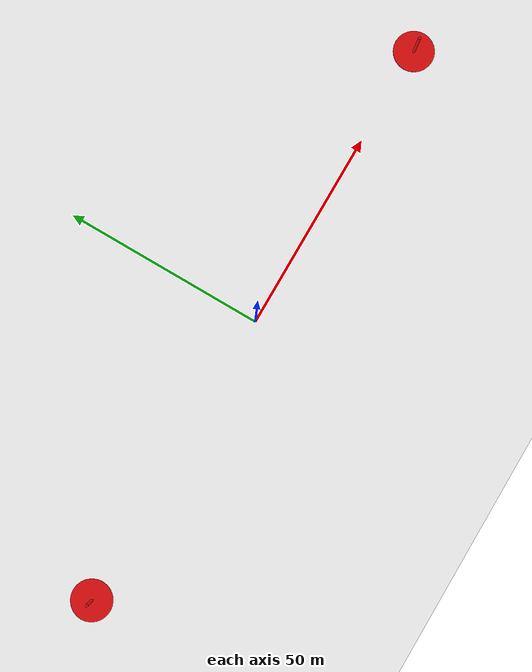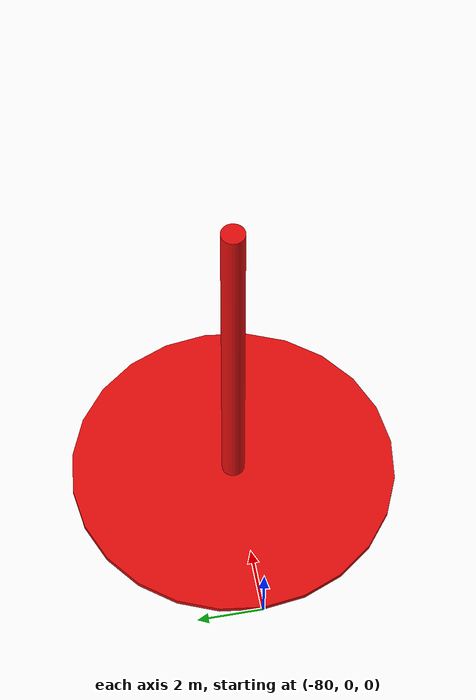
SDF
<?xml version="1.0" encoding="UTF-8"?>
<sdf version="1.9">
  <world name="grass">
    <physics type="ode">
      <max_step_size>0.004</max_step_size>
      <real_time_factor>1.0</real_time_factor>
      <real_time_update_rate>250</real_time_update_rate>
    </physics>
    <gravity>0 0 -9.8</gravity>
    <magnetic_field>6e-06 2.3e-05 -4.2e-05</magnetic_field>
    <atmosphere type="adiabatic"/>
    <scene>
      <grid>false</grid>
      <ambient>0.4 0.4 0.4 1</ambient>
      <background>0.7 0.7 0.7 1</background>
      <shadows>true</shadows>
    </scene>
    <model name="ground_plane">
      <static>true</static>
      <link name="link">
        <collision name="collision">
          <geometry>
            <plane>
              <normal>0 0 1</normal>
              <size>1 1</size>
            </plane>
          </geometry>
          <surface>
            <friction>
              <ode/>
            </friction>
            <bounce/>
            <contact/>
          </surface>
        </collision>
        <visual name="visual">
          <geometry>
            <plane>
              <normal>0 0 1</normal>
              <size>250 250</size>
            </plane>
          </geometry>
          <material>
            <ambient>1 1 1 1</ambient>
            <diffuse>1 1 1 1</diffuse>
            <specular>0 0 0 1</specular>
            <pbr>
              <metal>
                <albedo_map>model://grass_ground/materials/textures/grass.png</albedo_map>
                <metalness>0</metalness>
                <roughness>1</roughness>
              </metal>
            </pbr>
          </material>
        </visual>
        <pose>0 0 0 0 -0 0</pose>
        <inertial>
          <pose>0 0 0 0 -0 0</pose>
          <mass>1</mass>
          <inertia>
            <ixx>1</ixx>
            <ixy>0</ixy>
            <ixz>0</ixz>
            <iyy>1</iyy>
            <iyz>0</iyz>
            <izz>1</izz>
          </inertia>
        </inertial>
        <enable_wind>false</enable_wind>
      </link>
      <pose>0 0 0 0 -0 0</pose>
      <self_collide>false</self_collide>
    </model>
    <light name="sunUTC" type="directional">
      <pose>0 0 500 0 -0 0</pose>
      <cast_shadows>true</cast_shadows>
      <intensity>1</intensity>
      <direction>0.001 0.625 -0.78</direction>
      <diffuse>0.904 0.904 0.904 1</diffuse>
      <specular>0.271 0.271 0.271 1</specular>
      <attenuation>
        <range>2000</range>
        <linear>0</linear>
        <constant>1</constant>
        <quadratic>0</quadratic>
      </attenuation>
      <spot>
        <inner_angle>0</inner_angle>
        <outer_angle>0</outer_angle>
        <falloff>0</falloff>
      </spot>
    </light>

    <model name="waypoint_a">
      <static>true</static>
      <pose>-75 0 0 0 0 0</pose>
      <link name="link">
        <visual name="pad">
          <pose>0 0 0.08 0 0 0</pose>
          <geometry>
            <cylinder><radius>5.0</radius><length>0.15</length></cylinder>
          </geometry>
          <material>
            <ambient>0.5 0.0 0.0 1</ambient>
            <diffuse>0.9 0.05 0.05 1</diffuse>
            <emissive>0.35 0.0 0.0 1</emissive>
          </material>
        </visual>
        <visual name="pole">
          <pose>0 0 6 0 0 0</pose>
          <geometry>
            <cylinder><radius>0.35</radius><length>12</length></cylinder>
          </geometry>
          <material>
            <ambient>0.5 0.0 0.0 1</ambient>
            <diffuse>0.9 0.05 0.05 1</diffuse>
            <emissive>0.35 0.0 0.0 1</emissive>
          </material>
        </visual>
      </link>
    </model>

    <model name="waypoint_b">
      <static>true</static>
      <pose>75 0 0 0 0 0</pose>
      <link name="link">
        <visual name="pad">
          <pose>0 0 0.08 0 0 0</pose>
          <geometry>
            <cylinder><radius>5.0</radius><length>0.15</length></cylinder>
          </geometry>
          <material>
            <ambient>0.5 0.0 0.0 1</ambient>
            <diffuse>0.9 0.05 0.05 1</diffuse>
            <emissive>0.35 0.0 0.0 1</emissive>
          </material>
        </visual>
        <visual name="pole">
          <pose>0 0 6 0 0 0</pose>
          <geometry>
            <cylinder><radius>0.35</radius><length>12</length></cylinder>
          </geometry>
          <material>
            <ambient>0.5 0.0 0.0 1</ambient>
            <diffuse>0.9 0.05 0.05 1</diffuse>
            <emissive>0.35 0.0 0.0 1</emissive>
          </material>
        </visual>
      </link>
    </model>
    <spherical_coordinates>
      <surface_model>EARTH_WGS84</surface_model>
      <world_frame_orientation>ENU</world_frame_orientation>
      <latitude_deg>47.397971057728974</latitude_deg>
      <longitude_deg> 8.546163739800146</longitude_deg>
      <elevation>0</elevation>
    </spherical_coordinates>
  </world>
</sdf>
